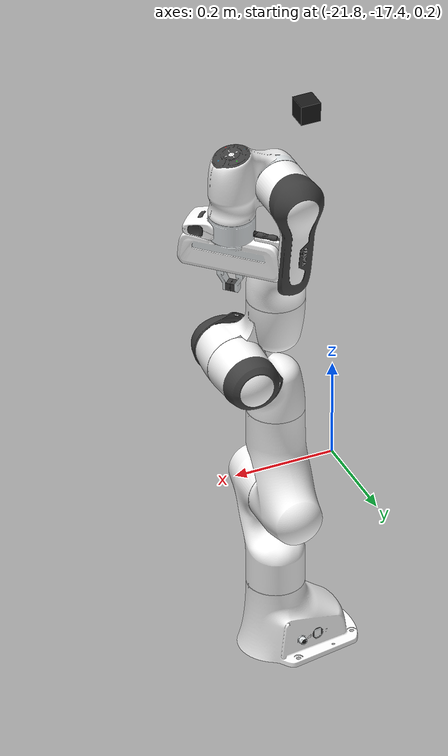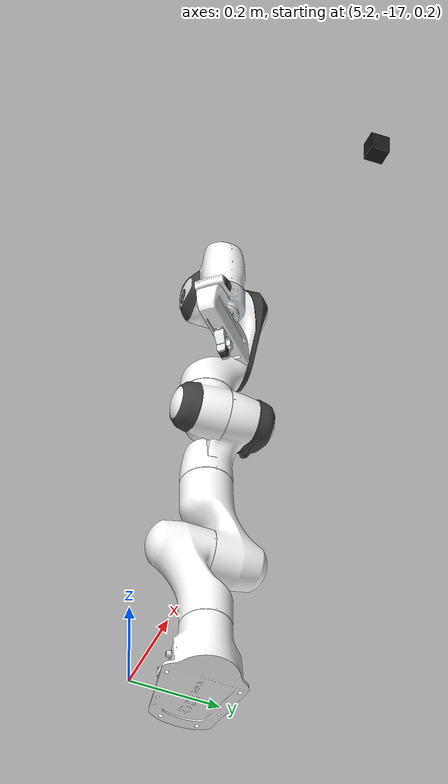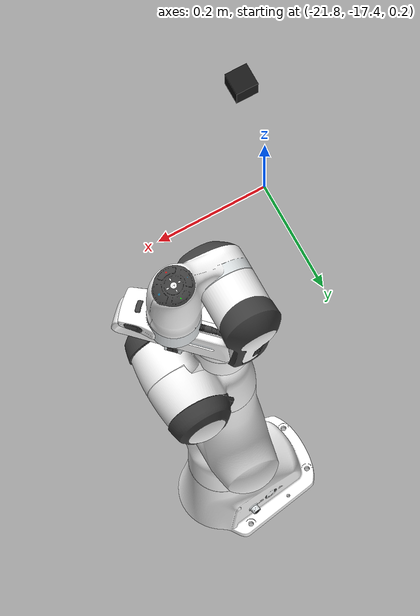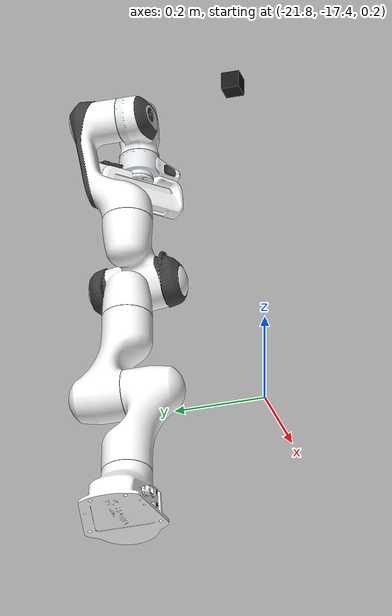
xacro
<?xml version="1.0"?>
<robot xmlns:xacro="http://www.ros.org/wiki/xacro" name="dual_panda">

    <!-- استدعاء قالب الذراع -->
    <xacro:include filename="panda_arm_macro.xacro"/>
    <!-- استدعاء ملف قالب الكاميرا -->
    <xacro:include filename="arm_camera.xacro"/>

    <!-- الإطار المرجعي للعالم -->
    <link name="world"/>

    <!-- 🏗️ 1. حقن ذراع التحميل (Load Arm) -->
    <xacro:panda_arm prefix="load" parent="world">
        <origin xyz="5.36 -16.9 0.11" rpy="0 0 0"/>
    </xacro:panda_arm>

    <!-- 📷 2. كاميرا ذراع التحميل (مع تمرير الـ topic الخاص بها) -->
    <xacro:arm_camera prefix="load" parent="world" topic="camera/image_raw">
        <origin xyz="6.0 -16.8 1.06" rpy="0 1.5707 0"/>
    </xacro:arm_camera>

    <!-- 🏗️ 3. حقن ذراع التفريغ (Unload Arm) -->
    <xacro:panda_arm prefix="unload" parent="world">
        <origin xyz="-21.5 -17.0 0.11" rpy="0 0 0"/>
    </xacro:panda_arm>

    <!-- 📷 4. كاميرا ذراع التفريغ (مع تمرير الـ topic الخاص بها) -->
    <xacro:arm_camera prefix="unload" parent="world" topic="unload_camera/image_raw">
        <origin xyz="-21.7 -17.3 1.06" rpy="0 1.5707 0"/>
    </xacro:arm_camera>

    <!-- 🔌 إضافة بلجن التحكم الخاص بـ Gazebo -->
    <gazebo>
        <plugin filename="libgz_ros2_control-system.so" name="gz_ros2_control::GazeboSimROS2ControlPlugin">
            <parameters>$(find my_factory)/config/dual_panda_controllers.yaml</parameters>
            <robot_param_node>/panda/robot_state_publisher</robot_param_node>
            <controller_manager_node_name>/controller_manager</controller_manager_node_name>
            <ros>
                <remapping>/joint_states:=/panda/joint_states</remapping>
            </ros>
        </plugin>
    </gazebo>

</robot>

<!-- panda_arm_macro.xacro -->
<robot xmlns:xacro="http://www.ros.org/wiki/xacro">

    <xacro:property name="mesh_pkg" value="package://moveit_resources_panda_description/meshes"/>

    <xacro:macro name="panda_inertial" params="mass inertia">
        <inertial>
            <origin xyz="0 0 0" rpy="0 0 0"/>
            <mass value="${mass}"/>
            <inertia ixx="${inertia}" ixy="0" ixz="0" iyy="${inertia}" iyz="0" izz="${inertia}"/>
        </inertial>
    </xacro:macro>

    <!-- 🟢 قالب الذراع -->
    <xacro:macro name="panda_arm" params="prefix parent *origin">

        <joint name="${prefix}_world_joint" type="fixed">
            <parent link="${parent}"/>
            <child link="${prefix}_link0"/>
            <xacro:insert_block name="origin"/>
        </joint>

        <link name="${prefix}_link0">
            <visual><geometry><mesh filename="${mesh_pkg}/visual/link0.dae"/></geometry></visual>
            <collision><geometry><mesh filename="${mesh_pkg}/collision/link0.stl"/></geometry></collision>
            <xacro:panda_inertial mass="2.81" inertia="0.1"/>
        </link>

        <link name="${prefix}_link1">
            <visual><geometry><mesh filename="${mesh_pkg}/visual/link1.dae"/></geometry></visual>
            <collision><geometry><mesh filename="${mesh_pkg}/collision/link1.stl"/></geometry></collision>
            <xacro:panda_inertial mass="2.7" inertia="0.05"/>
        </link>
        <joint name="${prefix}_joint1" type="revolute">
            <origin rpy="0 0 0" xyz="0 0 0.333"/>
            <parent link="${prefix}_link0"/><child link="${prefix}_link1"/>
            <axis xyz="0 0 1"/>
            <limit effort="87" lower="-2.9671" upper="2.9671" velocity="2.3925"/>
            <dynamics damping="10.0" friction="1.0"/>
        </joint>

        <link name="${prefix}_link2">
            <visual><geometry><mesh filename="${mesh_pkg}/visual/link2.dae"/></geometry></visual>
            <collision><geometry><mesh filename="${mesh_pkg}/collision/link2.stl"/></geometry></collision>
            <xacro:panda_inertial mass="2.73" inertia="0.05"/>
        </link>
        <joint name="${prefix}_joint2" type="revolute">
            <origin rpy="-1.57079632679 0 0" xyz="0 0 0"/>
            <parent link="${prefix}_link1"/><child link="${prefix}_link2"/>
            <axis xyz="0 0 1"/>
            <limit effort="87" lower="-1.8326" upper="1.8326" velocity="2.3925"/>
            <dynamics damping="10.0" friction="1.0"/>
        </joint>

        <link name="${prefix}_link3">
            <visual><geometry><mesh filename="${mesh_pkg}/visual/link3.dae"/></geometry></visual>
            <collision><geometry><mesh filename="${mesh_pkg}/collision/link3.stl"/></geometry></collision>
            <xacro:panda_inertial mass="2.04" inertia="0.04"/>
        </link>
        <joint name="${prefix}_joint3" type="revolute">
            <origin rpy="1.57079632679 0 0" xyz="0 -0.316 0"/>
            <parent link="${prefix}_link2"/><child link="${prefix}_link3"/>
            <axis xyz="0 0 1"/>
            <limit effort="87" lower="-2.9671" upper="2.9671" velocity="2.3925"/>
            <dynamics damping="10.0" friction="1.0"/>
        </joint>

        <link name="${prefix}_link4">
            <visual><geometry><mesh filename="${mesh_pkg}/visual/link4.dae"/></geometry></visual>
            <collision><geometry><mesh filename="${mesh_pkg}/collision/link4.stl"/></geometry></collision>
            <xacro:panda_inertial mass="2.08" inertia="0.04"/>
        </link>
        <joint name="${prefix}_joint4" type="revolute">
            <origin rpy="1.57079632679 0 0" xyz="0.0825 0 0"/>
            <parent link="${prefix}_link3"/><child link="${prefix}_link4"/>
            <axis xyz="0 0 1"/>
            <limit effort="87" lower="-3.1416" upper="0.0873" velocity="2.3925"/>
            <dynamics damping="10.0" friction="1.0"/>
        </joint>

        <link name="${prefix}_link5">
            <visual><geometry><mesh filename="${mesh_pkg}/visual/link5.dae"/></geometry></visual>
            <collision><geometry><mesh filename="${mesh_pkg}/collision/link5.stl"/></geometry></collision>
            <xacro:panda_inertial mass="3.0" inertia="0.05"/>
        </link>
        <joint name="${prefix}_joint5" type="revolute">
            <origin rpy="-1.57079632679 0 0" xyz="-0.0825 0.384 0"/>
            <parent link="${prefix}_link4"/><child link="${prefix}_link5"/>
            <axis xyz="0 0 1"/>
            <limit effort="12" lower="-2.9671" upper="2.9671" velocity="2.8710"/>
            <dynamics damping="10.0" friction="1.0"/>
        </joint>

        <link name="${prefix}_link6">
            <visual><geometry><mesh filename="${mesh_pkg}/visual/link6.dae"/></geometry></visual>
            <collision><geometry><mesh filename="${mesh_pkg}/collision/link6.stl"/></geometry></collision>
            <xacro:panda_inertial mass="1.3" inertia="0.02"/>
        </link>
        <joint name="${prefix}_joint6" type="revolute">
            <origin rpy="1.57079632679 0 0" xyz="0 0 0"/>
            <parent link="${prefix}_link5"/><child link="${prefix}_link6"/>
            <axis xyz="0 0 1"/>
            <limit effort="12" lower="-0.0873" upper="3.8223" velocity="2.8710"/>
            <dynamics damping="10.0" friction="1.0"/>
        </joint>

        <link name="${prefix}_link7">
            <visual><geometry><mesh filename="${mesh_pkg}/visual/link7.dae"/></geometry></visual>
            <collision><geometry><mesh filename="${mesh_pkg}/collision/link7.stl"/></geometry></collision>
            <xacro:panda_inertial mass="0.4" inertia="0.01"/>
        </link>
        <joint name="${prefix}_joint7" type="revolute">
            <origin rpy="1.57079632679 0 0" xyz="0.088 0 0"/>
            <parent link="${prefix}_link6"/><child link="${prefix}_link7"/>
            <axis xyz="0 0 1"/>
            <limit effort="12" lower="-2.9671" upper="2.9671" velocity="2.8710"/>
            <dynamics damping="10.0" friction="1.0"/>
        </joint>

        <link name="${prefix}_link8">
            <xacro:panda_inertial mass="0.05" inertia="0.001"/>
        </link>
        <joint name="${prefix}_joint8" type="fixed">
            <origin rpy="0 0 0" xyz="0 0 0.107"/>
            <parent link="${prefix}_link7"/><child link="${prefix}_link8"/>
        </joint>

        <joint name="${prefix}_hand_joint" type="fixed">
            <parent link="${prefix}_link8"/><child link="${prefix}_hand"/>
            <origin rpy="0 0 -0.785398163397" xyz="0 0 0"/>
        </joint>
        <link name="${prefix}_hand">
            <visual><geometry><mesh filename="${mesh_pkg}/visual/hand.dae"/></geometry></visual>
            <collision><geometry><mesh filename="${mesh_pkg}/collision/hand.stl"/></geometry></collision>
            <xacro:panda_inertial mass="0.73" inertia="0.02"/>
        </link>

        <link name="${prefix}_leftfinger">
            <visual><geometry><mesh filename="${mesh_pkg}/visual/finger.dae"/></geometry></visual>
            <collision><geometry><mesh filename="${mesh_pkg}/collision/finger.stl"/></geometry></collision>
            <xacro:panda_inertial mass="0.015" inertia="0.0001"/>
        </link>
        <link name="${prefix}_rightfinger">
            <visual>
                <origin rpy="0 0 3.14159265359" xyz="0 0 0"/>
                <geometry><mesh filename="${mesh_pkg}/visual/finger.dae"/></geometry>
            </visual>
            <collision>
                <origin rpy="0 0 3.14159265359" xyz="0 0 0"/>
                <geometry><mesh filename="${mesh_pkg}/collision/finger.stl"/></geometry>
            </collision>
            <xacro:panda_inertial mass="0.015" inertia="0.0001"/>
        </link>
        <joint name="${prefix}_finger_joint1" type="prismatic">
            <parent link="${prefix}_hand"/><child link="${prefix}_leftfinger"/>
            <origin rpy="0 0 0" xyz="0 0 0.0584"/>
            <axis xyz="0 1 0"/>
            <limit effort="20" lower="0.0" upper="0.04" velocity="0.2"/>
            <dynamics damping="10.0" friction="0.0"/>
        </joint>
        <joint name="${prefix}_finger_joint2" type="prismatic">
            <parent link="${prefix}_hand"/><child link="${prefix}_rightfinger"/>
            <origin rpy="0 0 0" xyz="0 0 0.0584"/>
            <axis xyz="0 -1 0"/>
            <limit effort="20" lower="0.0" upper="0.04" velocity="0.2"/>
            <mimic joint="${prefix}_finger_joint1"/>
            <dynamics damping="10.0" friction="0.0"/>
        </joint>

        <!-- 🟢 إعدادات التحكم الخاصة بهذا الذراع فقط -->
        <ros2_control name="${prefix}_PandaGazeboSystem" type="system">
            <hardware>
                <plugin>gz_ros2_control/GazeboSimSystem</plugin>
            </hardware>
            <xacro:macro name="arm_joint_ctrl" params="jname init">
                <joint name="${jname}">
                    <command_interface name="position"/>
                    <state_interface name="position"><param name="initial_value">${init}</param></state_interface>
                    <state_interface name="velocity"/>
                    <state_interface name="effort"/>
                </joint>
            </xacro:macro>
            <xacro:arm_joint_ctrl jname="${prefix}_joint1" init="0.0"/>
            <xacro:arm_joint_ctrl jname="${prefix}_joint2" init="-0.785"/>
            <xacro:arm_joint_ctrl jname="${prefix}_joint3" init="0.0"/>
            <xacro:arm_joint_ctrl jname="${prefix}_joint4" init="-2.356"/>
            <xacro:arm_joint_ctrl jname="${prefix}_joint5" init="0.0"/>
            <xacro:arm_joint_ctrl jname="${prefix}_joint6" init="1.571"/>
            <xacro:arm_joint_ctrl jname="${prefix}_joint7" init="0.785"/>

            <joint name="${prefix}_finger_joint1">
                <command_interface name="position"/>
                <state_interface name="position"><param name="initial_value">0.0</param></state_interface>
                <state_interface name="velocity"/>
                <state_interface name="effort"/>
            </joint>
            <joint name="${prefix}_finger_joint2">
                <param name="mimic">${prefix}_finger_joint1</param>
                <param name="multiplier">1</param>
                <command_interface name="position"/>
                <state_interface name="position"><param name="initial_value">0.0</param></state_interface>
                <state_interface name="velocity"/>
                <state_interface name="effort"/>
            </joint>
        </ros2_control>
    </xacro:macro>
</robot>

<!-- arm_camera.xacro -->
<robot xmlns:xacro="http://www.ros.org/wiki/xacro">

    <xacro:macro name="arm_camera" params="prefix parent topic *origin">
        <link name="${prefix}_camera_link">
            <visual>
                <geometry>
                    <box size="0.04 0.04 0.04"/>
                </geometry>
                <material name="black">
                    <color rgba="0.1 0.1 0.1 1.0"/>
                </material>
            </visual>
            <collision>
                <geometry>
                    <box size="0.04 0.04 0.04"/>
                </geometry>
            </collision>
            <inertial>
                <origin xyz="0 0 0" rpy="0 0 0"/>
                <mass value="0.05"/>
                <inertia ixx="0.0001" ixy="0" ixz="0" iyy="0.0001" iyz="0" izz="0.0001"/>
            </inertial>
        </link>

        <!-- ربط الكاميرا بالإطار المرجعي مع تمرير الإحداثيات -->
        <joint name="${prefix}_camera_joint" type="fixed">
            <xacro:insert_block name="origin"/>
            <parent link="${parent}"/>
            <child link="${prefix}_camera_link"/>
        </joint>

        <!-- إعدادات حساس الكاميرا في Gazebo -->
        <gazebo reference="${prefix}_camera_link">
            <sensor name="${prefix}_camera" type="rgbd">
                <camera>
                    <horizontal_fov>1.047</horizontal_fov>
                    <image>
                        <width>640</width>
                        <height>480</height>
                        <format>R8G8B8</format>
                    </image>
                    <clip>
                        <near>0.01</near>
                        <far>20.0</far>
                    </clip>
                </camera>
                <always_on>1</always_on>
                <update_rate>30.0</update_rate>
                <visualize>true</visualize>
                <topic>${topic}</topic>
            </sensor>

            <plugin filename="libignition-gazebo-sensors-system.so" name="ignition::gazebo::systems::Sensors">
                <render_engine>ogre2</render_engine>
            </plugin>
        </gazebo>
    </xacro:macro>

</robot>
